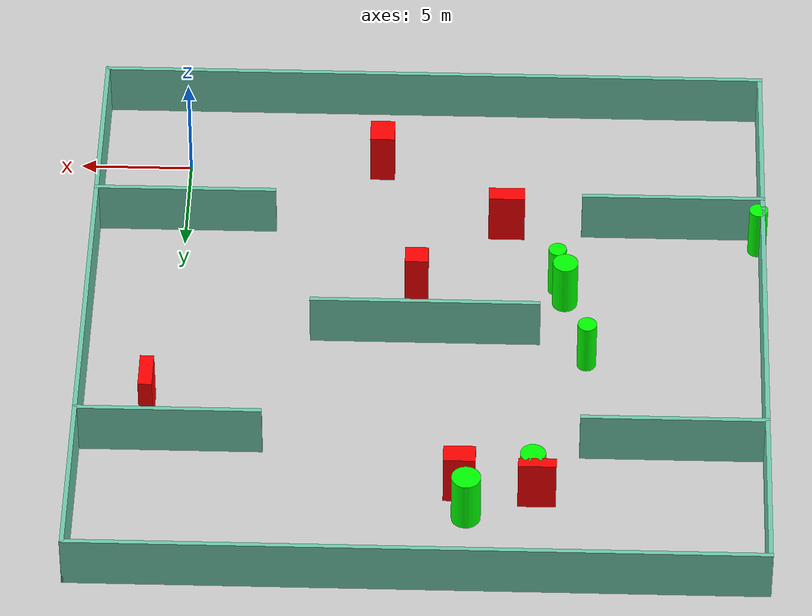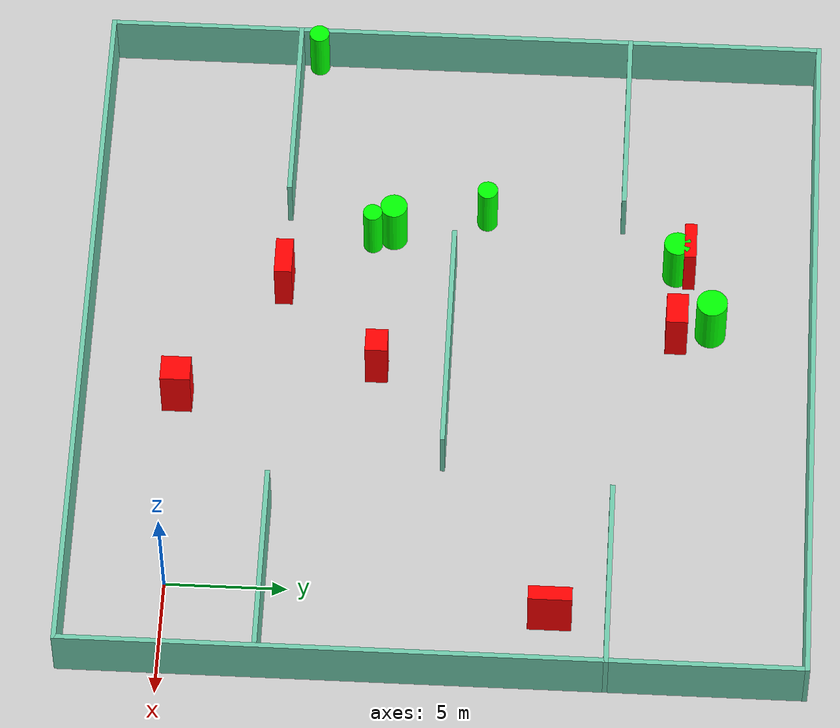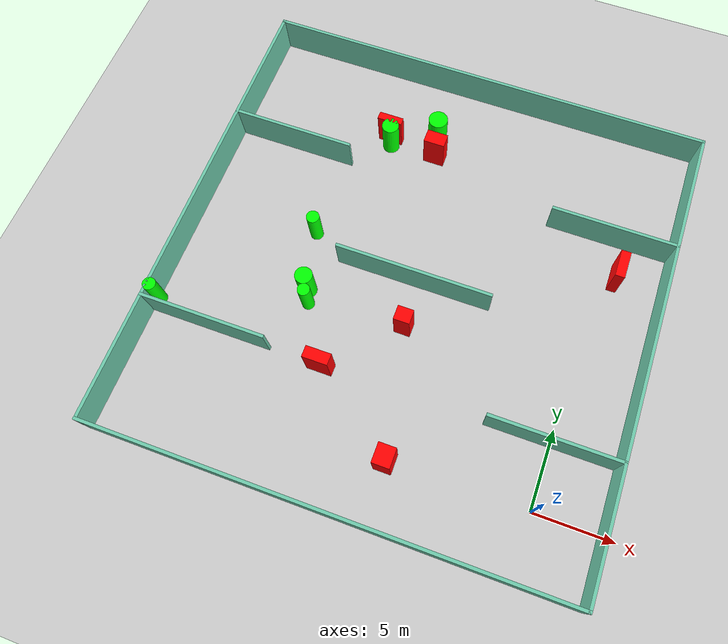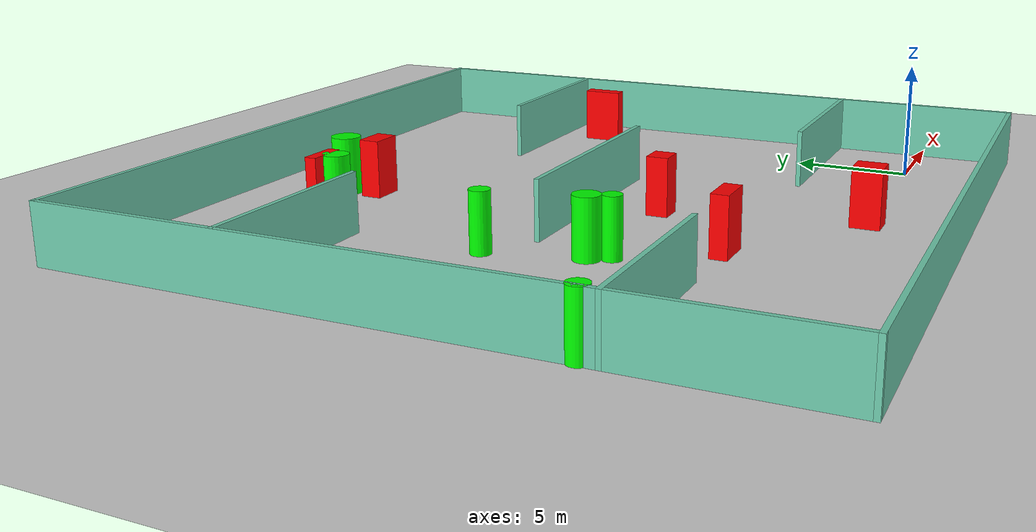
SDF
<sdf version="1.7">
 <world name="default">
  <light name="sun" type="directional">
   <pose>0 0 10 0 -0 0</pose>
   <diffuse>0.8 0.8 0.8 1</diffuse>
   <specular>0.2 0.2 0.2 1</specular>
   <attenuation>
    <range>1000</range>
    <constant>0.9</constant>
    <linear>0.01</linear>
    <quadratic>0.001</quadratic>
   </attenuation>
   <direction>-0.5 0.1 -0.9</direction>
   <spot><inner_angle>0</inner_angle><outer_angle>0</outer_angle><falloff>0</falloff></spot>
  </light>
  <model name="ground_plane">
   <static>1</static>
   <link name="link">
    <collision name="collision">
     <geometry><plane><normal>0 0 1</normal><size>100 100</size></plane></geometry>
     <surface>
      <contact><collide_bitmask>65535</collide_bitmask></contact>
      <friction><ode><mu>100</mu><mu2>50</mu2></ode></friction>
     </surface>
    </collision>
    <visual name="visual">
     <cast_shadows>0</cast_shadows>
     <geometry><plane><normal>0 0 1</normal><size>100 100</size></plane></geometry>
     <material>
      <script><uri>file://media/materials/scripts/gazebo.material</uri><name>Gazebo/Grey</name></script>
     </material>
    </visual>
   </link>
  </model>
  <gravity>0 0 -9.8</gravity>
  <magnetic_field>6e-06 2.3e-05 -4.2e-05</magnetic_field>
  <atmosphere type="adiabatic"/>
  <physics type="ode">
   <max_step_size>0.001</max_step_size>
   <real_time_factor>1</real_time_factor>
   <real_time_update_rate>1000</real_time_update_rate>
  </physics>
  <scene><ambient>0.4 0.4 0.4 1</ambient><background>0.7 0.7 0.7 1</background><shadows>1</shadows></scene>
  <spherical_coordinates>
   <surface_model>EARTH_WGS84</surface_model>
   <latitude_deg>0</latitude_deg>
   <longitude_deg>0</longitude_deg>
   <elevation>0</elevation>
   <heading_deg>0</heading_deg>
  </spherical_coordinates>
  <model name="my_base_walls">
   <link name="Wall_10">
    <collision name="Wall_10_Collision">
     <geometry><box><size>8.2 0.2 2.5</size></box></geometry>
     <pose>0 0 1.25 0 -0 0</pose>
    </collision>
    <visual name="Wall_10_Visual">
     <pose>0 0 1.25 0 -0 0</pose>
     <geometry><box><size>8.2 0.2 2.5</size></box></geometry>
     <material>
      <script><uri>file://media/materials/scripts/gazebo.material</uri><name>Gazebo/Grey</name></script>
      <ambient>0.435294 0.796078 0.67451 1</ambient>
     </material>
     <meta><layer>0</layer></meta>
    </visual>
    <pose>-11 -7 0 0 -0 0</pose>
   </link>
   <link name="Wall_12">
    <collision name="Wall_12_Collision">
     <geometry><box><size>8.2 0.2 2.5</size></box></geometry>
     <pose>0 0 1.25 0 -0 0</pose>
    </collision>
    <visual name="Wall_12_Visual">
     <pose>0 0 1.25 0 -0 0</pose>
     <geometry><box><size>8.2 0.2 2.5</size></box></geometry>
     <material>
      <script><uri>file://media/materials/scripts/gazebo.material</uri><name>Gazebo/Grey</name></script>
      <ambient>0.435294 0.796078 0.67451 1</ambient>
     </material>
     <meta><layer>0</layer></meta>
    </visual>
    <pose>-11 7 0 0 -0 0</pose>
   </link>
   <link name="Wall_14">
    <collision name="Wall_14_Collision">
     <geometry><box><size>8.2 0.2 2.5</size></box></geometry>
     <pose>0 0 1.25 0 -0 0</pose>
    </collision>
    <visual name="Wall_14_Visual">
     <pose>0 0 1.25 0 -0 0</pose>
     <geometry><box><size>8.2 0.2 2.5</size></box></geometry>
     <material>
      <script><uri>file://media/materials/scripts/gazebo.material</uri><name>Gazebo/Grey</name></script>
      <ambient>0.435294 0.796078 0.67451 1</ambient>
     </material>
     <meta><layer>0</layer></meta>
    </visual>
    <pose>11 7 0 0 -0 3.14159</pose>
   </link>
   <link name="Wall_16">
    <collision name="Wall_16_Collision">
     <geometry><box><size>10.2 0.2 2.5</size></box></geometry>
     <pose>0 0 1.25 0 -0 0</pose>
    </collision>
    <visual name="Wall_16_Visual">
     <pose>0 0 1.25 0 -0 0</pose>
     <geometry><box><size>10.2 0.2 2.5</size></box></geometry>
     <material>
      <script><uri>file://media/materials/scripts/gazebo.material</uri><name>Gazebo/Grey</name></script>
      <ambient>0.435294 0.796078 0.67451 1</ambient>
     </material>
     <meta><layer>0</layer></meta>
    </visual>
    <pose>0 0 0 0 -0 3.14159</pose>
   </link>
   <link name="Wall_2">
    <collision name="Wall_2_Collision">
     <geometry><box><size>30.2 0.2 2.5</size></box></geometry>
     <pose>0 0 1.25 0 -0 0</pose>
    </collision>
    <visual name="Wall_2_Visual">
     <pose>0 0 1.25 0 -0 0</pose>
     <geometry><box><size>30.2 0.2 2.5</size></box></geometry>
     <material>
      <script><uri>file://media/materials/scripts/gazebo.material</uri><name>Gazebo/Grey</name></script>
      <ambient>0.435294 0.796078 0.67451 1</ambient>
     </material>
     <meta><layer>0</layer></meta>
    </visual>
    <pose>0 -15 0 0 -0 3.14159</pose>
   </link>
   <link name="Wall_3">
    <collision name="Wall_3_Collision">
     <geometry><box><size>30.2 0.2 2.5</size></box></geometry>
     <pose>0 0 1.25 0 -0 0</pose>
    </collision>
    <visual name="Wall_3_Visual">
     <pose>0 0 1.25 0 -0 0</pose>
     <geometry><box><size>30.2 0.2 2.5</size></box></geometry>
     <material>
      <script><uri>file://media/materials/scripts/gazebo.material</uri><name>Gazebo/Grey</name></script>
      <ambient>0.435294 0.796078 0.67451 1</ambient>
     </material>
     <meta><layer>0</layer></meta>
    </visual>
    <pose>-15 0 0 0 -0 1.5708</pose>
   </link>
   <link name="Wall_4">
    <collision name="Wall_4_Collision">
     <geometry><box><size>30.2 0.2 2.5</size></box></geometry>
     <pose>0 0 1.25 0 -0 0</pose>
    </collision>
    <visual name="Wall_4_Visual">
     <pose>0 0 1.25 0 -0 0</pose>
     <geometry><box><size>30.2 0.2 2.5</size></box></geometry>
     <material>
      <script><uri>file://media/materials/scripts/gazebo.material</uri><name>Gazebo/Grey</name></script>
      <ambient>0.435294 0.796078 0.67451 1</ambient>
     </material>
     <meta><layer>0</layer></meta>
    </visual>
    <pose>0 15 0 0 -0 0</pose>
   </link>
   <link name="Wall_6">
    <collision name="Wall_6_Collision">
     <geometry><box><size>30.2 0.2 2.5</size></box></geometry>
     <pose>0 0 1.25 0 -0 0</pose>
    </collision>
    <visual name="Wall_6_Visual">
     <pose>0 0 1.25 0 -0 0</pose>
     <geometry><box><size>30.2 0.2 2.5</size></box></geometry>
     <material>
      <script><uri>file://media/materials/scripts/gazebo.material</uri><name>Gazebo/Grey</name></script>
      <ambient>0.435294 0.796078 0.67451 1</ambient>
     </material>
     <meta><layer>0</layer></meta>
    </visual>
    <pose>15 0 0 0 -0 1.5708</pose>
   </link>
   <link name="Wall_8">
    <collision name="Wall_8_Collision">
     <geometry><box><size>8.2 0.2 2.5</size></box></geometry>
     <pose>0 0 1.25 0 -0 0</pose>
    </collision>
    <visual name="Wall_8_Visual">
     <pose>0 0 1.25 0 -0 0</pose>
     <geometry><box><size>8.2 0.2 2.5</size></box></geometry>
     <material>
      <script><uri>file://media/materials/scripts/gazebo.material</uri><name>Gazebo/Grey</name></script>
      <ambient>0.435294 0.796078 0.67451 1</ambient>
     </material>
     <meta><layer>0</layer></meta>
    </visual>
    <pose>11 -7 0 0 -0 3.14159</pose>
   </link>
   <static>1</static>
   <pose>-11 11 0 0 -0 0</pose>
  </model>
  <model name="cylinder1">
   <static>1</static>
   <link name="link">
    <inertial>
     <mass>1</mass>
     <inertia><ixx>0.5</ixx><ixy>0</ixy><ixz>0</ixz><iyy>0.5</iyy><iyz>0</iyz><izz>1</izz></inertia>
    </inertial>
    <collision name="collision">
     <geometry><cylinder><radius>0.5584072126820465</radius><length>2.5</length></cylinder></geometry>
    </collision>
    <visual name="visual">
     <geometry><cylinder><radius>0.5584072126820465</radius><length>2.5</length></cylinder></geometry>
     <material>
      <ambient>0 1 0 1</ambient>
      <diffuse>0 1 0 1</diffuse>
      <specular>0.1 0.1 0.1 1</specular>
      <emissive>0 0 0 0</emissive>
     </material>
    </visual>
   </link>
   <pose>-15.888117807460805 20.29411745961317 1.25 0 0 0</pose>
  </model>
  <model name="cylinder2">
   <static>1</static>
   <link name="link">
    <inertial>
     <mass>1</mass>
     <inertia><ixx>0.5</ixx><ixy>0</ixy><ixz>0</ixz><iyy>0.5</iyy><iyz>0</iyz><izz>1</izz></inertia>
    </inertial>
    <collision name="collision">
     <geometry><cylinder><radius>0.5621370559135732</radius><length>2.5</length></cylinder></geometry>
    </collision>
    <visual name="visual">
     <geometry><cylinder><radius>0.5621370559135732</radius><length>2.5</length></cylinder></geometry>
     <material>
      <ambient>0 1 0 1</ambient>
      <diffuse>0 1 0 1</diffuse>
      <specular>0.1 0.1 0.1 1</specular>
      <emissive>0 0 0 0</emissive>
     </material>
    </visual>
   </link>
   <pose>-17.184753638997655 8.411877752282226 1.25 0 0 0</pose>
  </model>
  <model name="cylinder3">
   <static>1</static>
   <link name="link">
    <inertial>
     <mass>1</mass>
     <inertia><ixx>0.5</ixx><ixy>0</ixy><ixz>0</ixz><iyy>0.5</iyy><iyz>0</iyz><izz>1</izz></inertia>
    </inertial>
    <collision name="collision">
     <geometry><cylinder><radius>0.42373588649324295</radius><length>2.5</length></cylinder></geometry>
    </collision>
    <visual name="visual">
     <geometry><cylinder><radius>0.42373588649324295</radius><length>2.5</length></cylinder></geometry>
     <material>
      <ambient>0 1 0 1</ambient>
      <diffuse>0 1 0 1</diffuse>
      <specular>0.1 0.1 0.1 1</specular>
      <emissive>0 0 0 0</emissive>
     </material>
    </visual>
   </link>
   <pose>-18.17379331597845 12.288856509965019 1.25 0 0 0</pose>
  </model>
  <model name="cylinder4">
   <static>1</static>
   <link name="link">
    <inertial>
     <mass>1</mass>
     <inertia><ixx>0.5</ixx><ixy>0</ixy><ixz>0</ixz><iyy>0.5</iyy><iyz>0</iyz><izz>1</izz></inertia>
    </inertial>
    <collision name="collision">
     <geometry><cylinder><radius>0.6363581825031531</radius><length>2.5</length></cylinder></geometry>
    </collision>
    <visual name="visual">
     <geometry><cylinder><radius>0.6363581825031531</radius><length>2.5</length></cylinder></geometry>
     <material>
      <ambient>0 1 0 1</ambient>
      <diffuse>0 1 0 1</diffuse>
      <specular>0.1 0.1 0.1 1</specular>
      <emissive>0 0 0 0</emissive>
     </material>
    </visual>
   </link>
   <pose>-13.037745601754144 21.801325143786887 1.25 0 0 0</pose>
  </model>
  <model name="cylinder5">
   <static>1</static>
   <link name="link">
    <inertial>
     <mass>1</mass>
     <inertia><ixx>0.5</ixx><ixy>0</ixy><ixz>0</ixz><iyy>0.5</iyy><iyz>0</iyz><izz>1</izz></inertia>
    </inertial>
    <collision name="collision">
     <geometry><cylinder><radius>0.39850669231318625</radius><length>2.5</length></cylinder></geometry>
    </collision>
    <visual name="visual">
     <geometry><cylinder><radius>0.39850669231318625</radius><length>2.5</length></cylinder></geometry>
     <material>
      <ambient>0 1 0 1</ambient>
      <diffuse>0 1 0 1</diffuse>
      <specular>0.1 0.1 0.1 1</specular>
      <emissive>0 0 0 0</emissive>
     </material>
    </visual>
   </link>
   <pose>-16.824495555306274 7.545507226589898 1.25 0 0 0</pose>
  </model>
  <model name="cylinder6">
   <static>1</static>
   <link name="link">
    <inertial>
     <mass>1</mass>
     <inertia><ixx>0.5</ixx><ixy>0</ixy><ixz>0</ixz><iyy>0.5</iyy><iyz>0</iyz><izz>1</izz></inertia>
    </inertial>
    <collision name="collision">
     <geometry><cylinder><radius>0.4141629960536033</radius><length>2.5</length></cylinder></geometry>
    </collision>
    <visual name="visual">
     <geometry><cylinder><radius>0.4141629960536033</radius><length>2.5</length></cylinder></geometry>
     <material>
      <ambient>0 1 0 1</ambient>
      <diffuse>0 1 0 1</diffuse>
      <specular>0.1 0.1 0.1 1</specular>
      <emissive>0 0 0 0</emissive>
     </material>
    </visual>
   </link>
   <pose>-25.82183002387192 4.765173709362204 1.25 0 0 0</pose>
  </model>
  <model name="box1">
   <static>1</static>
   <link name="link">
    <inertial>
     <mass>1</mass>
     <inertia><ixx>0.083</ixx><ixy>0</ixy><ixz>0</ixz><iyy>0.083</iyy><iyz>0</iyz><izz>0.083</izz></inertia>
    </inertial>
    <collision name="collision">
     <geometry><box><size>1.109804853803695 1.2341502268346551 2.5</size></box></geometry>
    </collision>
    <visual name="visual">
     <geometry><box><size>1.109804853803695 1.2341502268346551 2.5</size></box></geometry>
     <material>
      <ambient>1 0 0 1</ambient>
      <diffuse>1 0 0 1</diffuse>
      <specular>0.1 0.1 0.1 1</specular>
      <emissive>0 0 0 0</emissive>
     </material>
    </visual>
    <sensor name="my_contact" type="contact">
     <contact><collision>box_collision</collision><topic>__default_topic__</topic></contact>
    </sensor>
   </link>
   <pose>-8.788738115797255 -0.09052230912696757 1.25 0 0 0</pose>
  </model>
  <model name="box2">
   <static>1</static>
   <link name="link">
    <inertial>
     <mass>1</mass>
     <inertia><ixx>0.083</ixx><ixy>0</ixy><ixz>0</ixz><iyy>0.083</iyy><iyz>0</iyz><izz>0.083</izz></inertia>
    </inertial>
    <collision name="collision">
     <geometry><box><size>1.0338945561435557 0.922244083588664 2.5</size></box></geometry>
    </collision>
    <visual name="visual">
     <geometry><box><size>1.0338945561435557 0.922244083588664 2.5</size></box></geometry>
     <material>
      <ambient>1 0 0 1</ambient>
      <diffuse>1 0 0 1</diffuse>
      <specular>0.1 0.1 0.1 1</specular>
      <emissive>0 0 0 0</emissive>
     </material>
    </visual>
    <sensor name="my_contact" type="contact">
     <contact><collision>box_collision</collision><topic>__default_topic__</topic></contact>
    </sensor>
   </link>
   <pose>-10.556329970836787 8.057426282628075 1.25 0 0 0</pose>
  </model>
  <model name="box3">
   <static>1</static>
   <link name="link">
    <inertial>
     <mass>1</mass>
     <inertia><ixx>0.083</ixx><ixy>0</ixy><ixz>0</ixz><iyy>0.083</iyy><iyz>0</iyz><izz>0.083</izz></inertia>
    </inertial>
    <collision name="collision">
     <geometry><box><size>0.6143059717667715 1.779172857552895 2.5</size></box></geometry>
    </collision>
    <visual name="visual">
     <geometry><box><size>0.6143059717667715 1.779172857552895 2.5</size></box></geometry>
     <material>
      <ambient>1 0 0 1</ambient>
      <diffuse>1 0 0 1</diffuse>
      <specular>0.1 0.1 0.1 1</specular>
      <emissive>0 0 0 0</emissive>
     </material>
    </visual>
    <sensor name="my_contact" type="contact">
     <contact><collision>box_collision</collision><topic>__default_topic__</topic></contact>
    </sensor>
   </link>
   <pose>1.0509904535000132 15.669977294769382 1.25 0 0 0</pose>
  </model>
  <model name="box4">
   <static>1</static>
   <link name="link">
    <inertial>
     <mass>1</mass>
     <inertia><ixx>0.083</ixx><ixy>0</ixy><ixz>0</ixz><iyy>0.083</iyy><iyz>0</iyz><izz>0.083</izz></inertia>
    </inertial>
    <collision name="collision">
     <geometry><box><size>1.646210511634248 0.5006054916682917 2.5</size></box></geometry>
    </collision>
    <visual name="visual">
     <geometry><box><size>1.646210511634248 0.5006054916682917 2.5</size></box></geometry>
     <material>
      <ambient>1 0 0 1</ambient>
      <diffuse>1 0 0 1</diffuse>
      <specular>0.1 0.1 0.1 1</specular>
      <emissive>0 0 0 0</emissive>
     </material>
    </visual>
    <sensor name="my_contact" type="contact">
     <contact><collision>box_collision</collision><topic>__default_topic__</topic></contact>
    </sensor>
   </link>
   <pose>-16.076646976056136 20.83452437791271 1.25 0 0 0</pose>
  </model>
  <model name="box5">
   <static>1</static>
   <link name="link">
    <inertial>
     <mass>1</mass>
     <inertia><ixx>0.083</ixx><ixy>0</ixy><ixz>0</ixz><iyy>0.083</iyy><iyz>0</iyz><izz>0.083</izz></inertia>
    </inertial>
    <collision name="collision">
     <geometry><box><size>1.3958225547693188 0.8963589132488139 2.5</size></box></geometry>
    </collision>
    <visual name="visual">
     <geometry><box><size>1.3958225547693188 0.8963589132488139 2.5</size></box></geometry>
     <material>
      <ambient>1 0 0 1</ambient>
      <diffuse>1 0 0 1</diffuse>
      <specular>0.1 0.1 0.1 1</specular>
      <emissive>0 0 0 0</emissive>
     </material>
    </visual>
    <sensor name="my_contact" type="contact">
     <contact><collision>box_collision</collision><topic>__default_topic__</topic></contact>
    </sensor>
   </link>
   <pose>-12.72303473149043 20.37925655133498 1.25 0 0 0</pose>
  </model>
  <model name="box6">
   <static>1</static>
   <link name="link">
    <inertial>
     <mass>1</mass>
     <inertia><ixx>0.083</ixx><ixy>0</ixy><ixz>0</ixz><iyy>0.083</iyy><iyz>0</iyz><izz>0.083</izz></inertia>
    </inertial>
    <collision name="collision">
     <geometry><box><size>1.6233102219738937 0.728907125587724 2.5</size></box></geometry>
    </collision>
    <visual name="visual">
     <geometry><box><size>1.6233102219738937 0.728907125587724 2.5</size></box></geometry>
     <material>
      <ambient>1 0 0 1</ambient>
      <diffuse>1 0 0 1</diffuse>
      <specular>0.1 0.1 0.1 1</specular>
      <emissive>0 0 0 0</emissive>
     </material>
    </visual>
    <sensor name="my_contact" type="contact">
     <contact><collision>box_collision</collision><topic>__default_topic__</topic></contact>
    </sensor>
   </link>
   <pose>-14.514186999618618 3.9823426721861193 1.25 0 0 0</pose>
  </model>
 </world>
</sdf>
